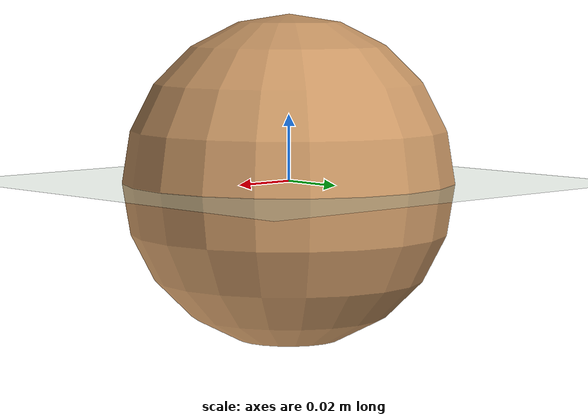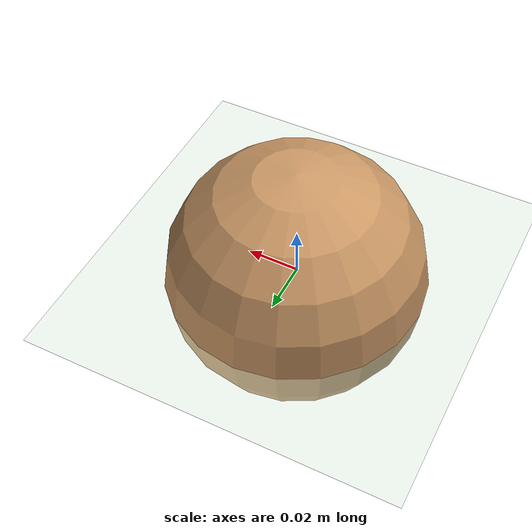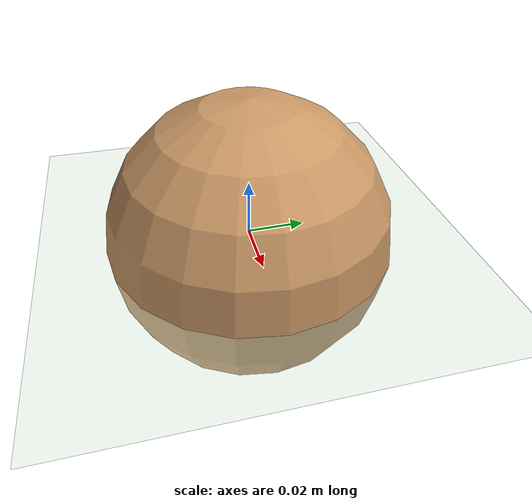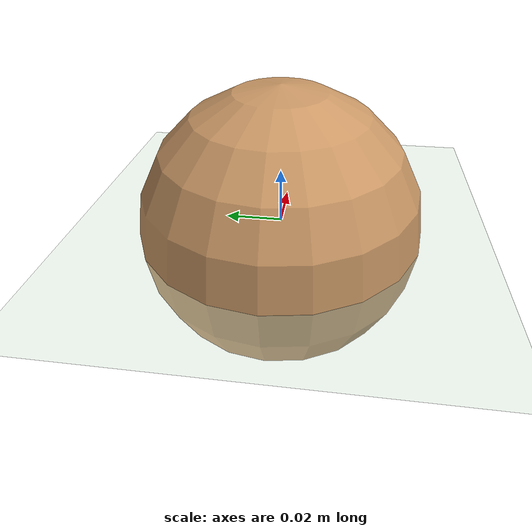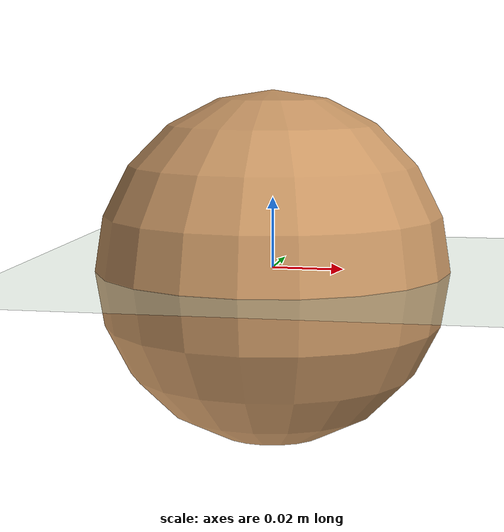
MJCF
<mujoco>
  <compiler angle="degree" coordinate="local" inertiafromgeom="true"/>
  <option integrator="RK4" timestep="0.02"/>
  <default>
    <joint armature="0" damping="0" limited="false"/>
    <geom conaffinity="0" condim="3" density="100" friction="1 0.5 0.5" margin="0" rgba="0.8 0.6 0.4 1"/>
  </default>
  <asset>
    <texture builtin="gradient" height="100" rgb1="1 1 1" rgb2="0 0 0" type="skybox" width="100"/>
    <texture builtin="flat" height="1278" mark="cross" markrgb="1 1 1" name="texgeom" random="0.01" rgb1="0 0.1 0.6" rgb2="0.0 0.0 0.0" type="cube" width="127"/>
    <texture builtin="checker" height="100" name="texplane" rgb1="0 0.1 0.6" rgb2="0.0 0.0 0.0" type="2d" width="10"/>
    <material name="MatPlane" reflectance="0.5" shininess="1" specular="1" texrepeat="10 10" texture="texplane"/>
    <material name="geom" texture="texgeom" texuniform="true"/>
  </asset>
  <worldbody>
    <light cutoff="100" diffuse="1 1 1" dir="-0 0 -1.3" directional="true" exponent="1" pos="0 0 1.3" specular=".1 .1 .1"/>
    <geom conaffinity="1" condim="3" material="MatPlane" name="floor" pos="0 0 0" rgba="0.8 0.9 0.8 1" size="1 1 1" type="plane"/>
    <body name="tracker0" pos="0 0 0">
      <camera name="track" mode="trackcom" pos="2 0.0 0.0" xyaxes="0 1 0 0 0 1"/>
      <geom name="pointbody0" pos="0 0 0.0" size="0.05" type="sphere"/>
      <freejoint name="tracker0_joint"/>
    </body>
    <body name="tracker1" pos="0.0 0 0">
      <geom name="pointbody1" pos="0 0 0.0" size="0.05" type="sphere"/>
      <freejoint name="tracker1_joint"/>
    </body>
    <body name="tracker2" pos="0 0 0">
      <geom name="pointbody2" pos="0 0 0.0" size="0.05" type="sphere"/>
      <freejoint name="tracker2_joint"/>
    </body>
    <body name="tracker3" pos="0 0 0">
      <geom name="pointbody3" pos="0 0 0.0" size="0.05" type="sphere" rgba="1 0 0 1.0"/>
      <freejoint name="tracker3_joint"/>
    </body>
    <body name="tracker4" pos="0 0 0">
      <geom name="pointbody4" pos="0 0 0.0" size="0.05" type="sphere"/>
      <freejoint name="tracker4_joint"/>
    </body>
    <body name="tracker5" pos="0 0 0">
      <geom name="pointbody5" pos="0 0 0.0" size="0.05" type="sphere"  rgba="0 0 1 1.0"/>
      <freejoint name="tracker5_joint"/>
    </body>

    <body name="shoulder_left" pos="0 0 0">
      <geom name="pointbody6" pos="0 0 0.0" size="0.05" type="sphere"  rgba="0 1 1 1.0"/>
      <freejoint name="tracker6_joint"/>
    </body>

    <body name="shoulder_right" pos="0 0 0">
      <geom name="pointbody7" pos="0 0 0.0" size="0.05" type="sphere"  rgba="0 1 1 1.0"/>
      <freejoint name="tracker7_joint"/>
    </body>

  </worldbody>
  <actuator>
    <!-- Those are just dummy actuators for providing ranges -->
  </actuator>
</mujoco>
